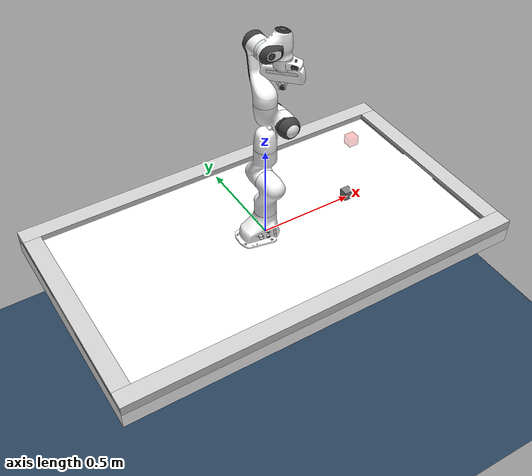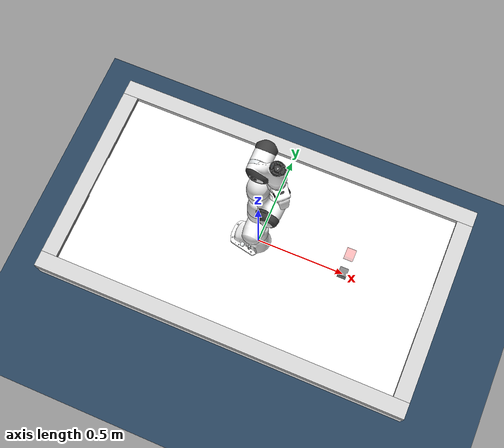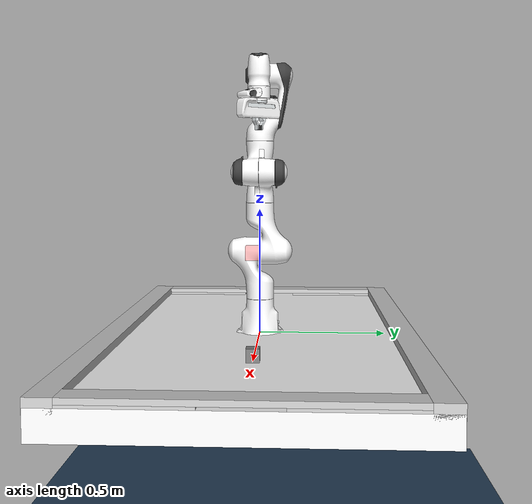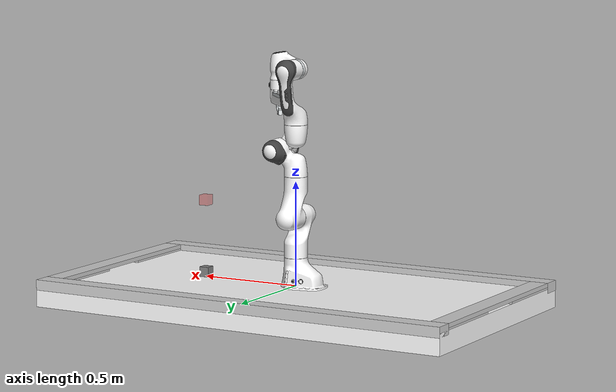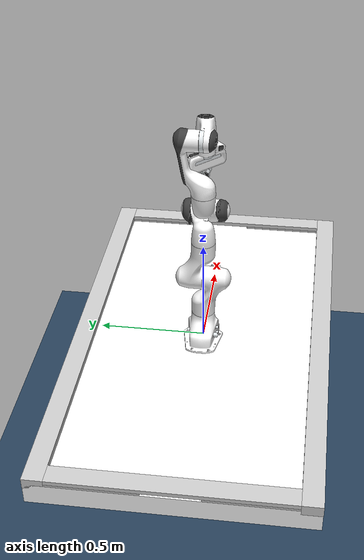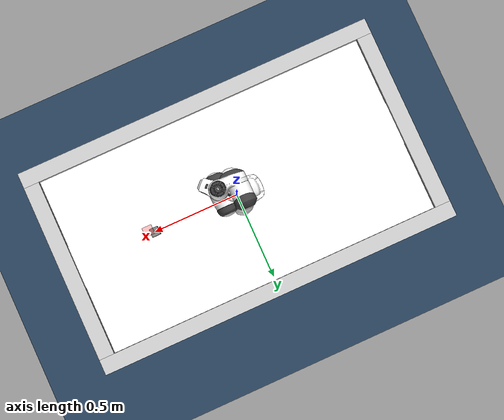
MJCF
<mujoco model="panda scene">

  <option cone="elliptic" timestep="5e-3" integrator="implicitfast">
  </option>
  <include file="panda.xml"/>
  <include file="assets/table.xml"/>
  <include file="assets/cube.xml"/>

  <statistic center="0.3 0 0.4" extent="1"/>

  <visual>
    <headlight diffuse="0.6 0.6 0.6" ambient="0.3 0.3 0.3" specular="0 0 0"/>
    <rgba haze="0.15 0.25 0.35 1"/>
    <global azimuth="120" elevation="-20"/>
  </visual>

  <asset>
    <texture type="skybox" builtin="gradient" rgb1="0.3 0.5 0.7" rgb2="0 0 0" width="512" height="3072"/>
    <texture type="2d" name="groundplane" builtin="checker" mark="edge" rgb1="0.2 0.3 0.4" rgb2="0.1 0.2 0.3"
      markrgb="0.8 0.8 0.8" width="300" height="300"/>
    <material name="groundplane" texture="groundplane" texuniform="true" texrepeat="5 5" reflectance="0.2"/>
  </asset>

  <worldbody>
    <light pos="0 0 1.5" dir="0 0 -1" directional="true"/>
    <geom name="floor" pos="0.0 0.0 -1.05" size="0 0 0.05" type="plane" material="groundplane"/>

    <body name="goal" mocap="true" pos="0.5 0.0 0.375">
      <site name="goal" size="0.024 0.024 0.024" rgba="1 0 0 0.25" type="box"/>
    </body>

  </worldbody>
  <keyframe>
    <key name="home" qpos="0 -0.569 0 -2.810 0 3.037 0.741 0.04 0.04 0.5 0.0 0.024 1 0 0 0" ctrl="0 0 0 0 0 0 0 0.04" act="0 -0.569 0 -2.810 0 3.037 0.741"/>
  </keyframe>
</mujoco>

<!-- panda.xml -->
<mujoco model="panda">
  <compiler angle="radian" meshdir="assets" autolimits="true"/>

  <default>
    <default class="panda">
      <material specular="0.5" shininess="0.25"/>
      <joint armature="0.1" damping="1" axis="0 0 1"/>
      <default class="finger">
        <joint axis="0 1 0" type="slide" range="0 0.04"/>
      </default>

      <default class="visual">
        <geom type="mesh" contype="0" conaffinity="0" group="2"/>
      </default>
      <default class="collision">
        <geom type="mesh" group="3"/>
        <default class="fingertip_pad_collision_1">
          <geom type="box" size="0.0085 0.004 0.0085" pos="0 0.0055 0.0445" solref="0.004 1"/>
        </default>
        <default class="fingertip_pad_collision_2">
          <geom type="box" size="0.003 0.002 0.003" pos="0.0055 0.002 0.05" solref="0.004 1"/>
        </default>
        <default class="fingertip_pad_collision_3">
          <geom type="box" size="0.003 0.002 0.003" pos="-0.0055 0.002 0.05" solref="0.004 1"/>
        </default>
        <default class="fingertip_pad_collision_4">
          <geom type="box" size="0.003 0.002 0.0035" pos="0.0055 0.002 0.0395" solref="0.004 1"/>
        </default>
        <default class="fingertip_pad_collision_5">
          <geom type="box" size="0.003 0.002 0.0035" pos="-0.0055 0.002 0.0395" solref="0.004 1"/>
        </default>
      </default>
    </default>
  </default>

  <asset>
    <material class="panda" name="white" rgba="1 1 1 1"/>
    <material class="panda" name="off_white" rgba="0.901961 0.921569 0.929412 1"/>
    <material class="panda" name="black" rgba="0.25 0.25 0.25 1"/>
    <material class="panda" name="green" rgba="0 1 0 1"/>
    <material class="panda" name="light_blue" rgba="0.039216 0.541176 0.780392 1"/>

    <!-- Collision meshes -->
    <mesh name="link0_c" file="link0.stl"/>
    <mesh name="link1_c" file="link1.stl"/>
    <mesh name="link2_c" file="link2.stl"/>
    <mesh name="link3_c" file="link3.stl"/>
    <mesh name="link4_c" file="link4.stl"/>
    <mesh name="link5_c0" file="link5_collision_0.obj"/>
    <mesh name="link5_c1" file="link5_collision_1.obj"/>
    <mesh name="link5_c2" file="link5_collision_2.obj"/>
    <mesh name="link6_c" file="link6.stl"/>
    <mesh name="link7_c" file="link7.stl"/>
    <mesh name="hand_c" file="hand.stl"/>

    <!-- Visual meshes -->
    <mesh file="link0_0.obj"/>
    <mesh file="link0_1.obj"/>
    <mesh file="link0_2.obj"/>
    <mesh file="link0_3.obj"/>
    <mesh file="link0_4.obj"/>
    <mesh file="link0_5.obj"/>
    <mesh file="link0_7.obj"/>
    <mesh file="link0_8.obj"/>
    <mesh file="link0_9.obj"/>
    <mesh file="link0_10.obj"/>
    <mesh file="link0_11.obj"/>
    <mesh file="link1.obj"/>
    <mesh file="link2.obj"/>
    <mesh file="link3_0.obj"/>
    <mesh file="link3_1.obj"/>
    <mesh file="link3_2.obj"/>
    <mesh file="link3_3.obj"/>
    <mesh file="link4_0.obj"/>
    <mesh file="link4_1.obj"/>
    <mesh file="link4_2.obj"/>
    <mesh file="link4_3.obj"/>
    <mesh file="link5_0.obj"/>
    <mesh file="link5_1.obj"/>
    <mesh file="link5_2.obj"/>
    <mesh file="link6_0.obj"/>
    <mesh file="link6_1.obj"/>
    <mesh file="link6_2.obj"/>
    <mesh file="link6_3.obj"/>
    <mesh file="link6_4.obj"/>
    <mesh file="link6_5.obj"/>
    <mesh file="link6_6.obj"/>
    <mesh file="link6_7.obj"/>
    <mesh file="link6_8.obj"/>
    <mesh file="link6_9.obj"/>
    <mesh file="link6_10.obj"/>
    <mesh file="link6_11.obj"/>
    <mesh file="link6_12.obj"/>
    <mesh file="link6_13.obj"/>
    <mesh file="link6_14.obj"/>
    <mesh file="link6_15.obj"/>
    <mesh file="link6_16.obj"/>
    <mesh file="link7_0.obj"/>
    <mesh file="link7_1.obj"/>
    <mesh file="link7_2.obj"/>
    <mesh file="link7_3.obj"/>
    <mesh file="link7_4.obj"/>
    <mesh file="link7_5.obj"/>
    <mesh file="link7_6.obj"/>
    <mesh file="link7_7.obj"/>
    <mesh file="hand_0.obj"/>
    <mesh file="hand_1.obj"/>
    <mesh file="hand_2.obj"/>
    <mesh file="hand_3.obj"/>
    <mesh file="hand_4.obj"/>
    <mesh file="finger_0.obj"/>
    <mesh file="finger_1.obj"/>
  </asset>

  <worldbody>
    <light name="top" pos="0 0 2" mode="trackcom"/>
    <body name="link0" childclass="panda">
      <inertial mass="0.629769" pos="-0.041018 -0.00014 0.049974"
        fullinertia="0.00315 0.00388 0.004285 8.2904e-7 0.00015 8.2299e-6"/>
      <geom mesh="link0_0" material="off_white" class="visual"/>
      <geom mesh="link0_1" material="black" class="visual"/>
      <geom mesh="link0_2" material="off_white" class="visual"/>
      <geom mesh="link0_3" material="black" class="visual"/>
      <geom mesh="link0_4" material="off_white" class="visual"/>
      <geom mesh="link0_5" material="black" class="visual"/>
      <geom mesh="link0_7" material="white" class="visual"/>
      <geom mesh="link0_8" material="white" class="visual"/>
      <geom mesh="link0_9" material="black" class="visual"/>
      <geom mesh="link0_10" material="off_white" class="visual"/>
      <geom mesh="link0_11" material="white" class="visual"/>
      <geom name="link0_c" mesh="link0_c" class="collision"/>
      <body name="link1" pos="0 0 0.333">
        <inertial mass="4.970684" pos="0.003875 0.002081 -0.04762"
          fullinertia="0.70337 0.70661 0.0091170 -0.00013900 0.0067720 0.019169"/>
        <joint name="joint1" range="-2.8973 2.8973"/>
        <geom material="white" mesh="link1" class="visual"/>
        <geom name="link1_c" mesh="link1_c" class="collision"/>
        <body name="link2" quat="1 -1 0 0">
          <inertial mass="0.646926" pos="-0.003141 -0.02872 0.003495"
            fullinertia="0.0079620 2.8110e-2 2.5995e-2 -3.925e-3 1.0254e-2 7.04e-4"/>
          <joint name="joint2" range="-1.7628 1.7628"/>
          <geom material="white" mesh="link2" class="visual"/>
          <geom name="link2_c" mesh="link2_c" class="collision"/>
          <body name="link3" pos="0 -0.316 0" quat="1 1 0 0">
            <joint name="joint3" range="-2.8973 2.8973"/>
            <inertial mass="3.228604" pos="2.7518e-2 3.9252e-2 -6.6502e-2"
              fullinertia="3.7242e-2 3.6155e-2 1.083e-2 -4.761e-3 -1.1396e-2 -1.2805e-2"/>
            <geom mesh="link3_0" material="white" class="visual"/>
            <geom mesh="link3_1" material="white" class="visual"/>
            <geom mesh="link3_2" material="white" class="visual"/>
            <geom mesh="link3_3" material="black" class="visual"/>
            <geom name="link3_c" mesh="link3_c" class="collision"/>
            <body name="link4" pos="0.0825 0 0" quat="1 1 0 0">
              <inertial mass="3.587895" pos="-5.317e-2 1.04419e-1 2.7454e-2"
                fullinertia="2.5853e-2 1.9552e-2 2.8323e-2 7.796e-3 -1.332e-3 8.641e-3"/>
              <joint name="joint4" range="-3.0718 -0.0698"/>
              <geom mesh="link4_0" material="white" class="visual"/>
              <geom mesh="link4_1" material="white" class="visual"/>
              <geom mesh="link4_2" material="black" class="visual"/>
              <geom mesh="link4_3" material="white" class="visual"/>
              <geom name="link4_c" mesh="link4_c" class="collision"/>
              <body name="link5" pos="-0.0825 0.384 0" quat="1 -1 0 0">
                <inertial mass="1.225946" pos="-1.1953e-2 4.1065e-2 -3.8437e-2"
                  fullinertia="3.5549e-2 2.9474e-2 8.627e-3 -2.117e-3 -4.037e-3 2.29e-4"/>
                <joint name="joint5" range="-2.8973 2.8973"/>
                <geom mesh="link5_0" material="black" class="visual"/>
                <geom mesh="link5_1" material="white" class="visual"/>
                <geom mesh="link5_2" material="white" class="visual"/>
                <geom name="link5_c0" mesh="link5_c0" class="collision"/>
                <geom name="link5_c1" mesh="link5_c1" class="collision"/>
                <geom name="link5_c2" mesh="link5_c2" class="collision"/>
                <body name="link6" quat="1 1 0 0">
                  <inertial mass="1.666555" pos="6.0149e-2 -1.4117e-2 -1.0517e-2"
                    fullinertia="1.964e-3 4.354e-3 5.433e-3 1.09e-4 -1.158e-3 3.41e-4"/>
                  <joint name="joint6" range="-0.0175 3.7525"/>
                  <geom mesh="link6_0" material="off_white" class="visual"/>
                  <geom mesh="link6_1" material="white" class="visual"/>
                  <geom mesh="link6_2" material="black" class="visual"/>
                  <geom mesh="link6_3" material="white" class="visual"/>
                  <geom mesh="link6_4" material="white" class="visual"/>
                  <geom mesh="link6_5" material="white" class="visual"/>
                  <geom mesh="link6_6" material="white" class="visual"/>
                  <geom mesh="link6_7" material="light_blue" class="visual"/>
                  <geom mesh="link6_8" material="light_blue" class="visual"/>
                  <geom mesh="link6_9" material="black" class="visual"/>
                  <geom mesh="link6_10" material="black" class="visual"/>
                  <geom mesh="link6_11" material="white" class="visual"/>
                  <geom mesh="link6_12" material="green" class="visual"/>
                  <geom mesh="link6_13" material="white" class="visual"/>
                  <geom mesh="link6_14" material="black" class="visual"/>
                  <geom mesh="link6_15" material="black" class="visual"/>
                  <geom mesh="link6_16" material="white" class="visual"/>
                  <geom name="link6_c" mesh="link6_c" class="collision"/>
                  <body name="link7" pos="0.088 0 0" quat="1 1 0 0">
                    <inertial mass="7.35522e-01" pos="1.0517e-2 -4.252e-3 6.1597e-2"
                      fullinertia="1.2516e-2 1.0027e-2 4.815e-3 -4.28e-4 -1.196e-3 -7.41e-4"/>
                    <joint name="joint7" range="-2.8973 2.8973"/>
                    <geom mesh="link7_0" material="white" class="visual"/>
                    <geom mesh="link7_1" material="black" class="visual"/>
                    <geom mesh="link7_2" material="black" class="visual"/>
                    <geom mesh="link7_3" material="black" class="visual"/>
                    <geom mesh="link7_4" material="black" class="visual"/>
                    <geom mesh="link7_5" material="black" class="visual"/>
                    <geom mesh="link7_6" material="black" class="visual"/>
                    <geom mesh="link7_7" material="white" class="visual"/>
                    <geom name="link7_c" mesh="link7_c" class="collision"/>
                    <body name="hand" pos="0 0 0.107" quat="0.9238795 0 0 -0.3826834">
                      <inertial mass="0.73" pos="-0.01 0 0.03" diaginertia="0.001 0.0025 0.0017"/>
                      <geom mesh="hand_0" material="off_white" class="visual"/>
                      <geom mesh="hand_1" material="black" class="visual"/>
                      <geom mesh="hand_2" material="black" class="visual"/>
                      <geom mesh="hand_3" material="white" class="visual"/>
                      <geom mesh="hand_4" material="off_white" class="visual"/>
                      <geom name="hand_c" mesh="hand_c" class="collision"/>
                      <site name="gripper" pos="0 0.0 0.107" size="0.005" rgba="1 0 0 1"/>
                      <body name="left_finger" pos="0 0 0.0584">
                        <inertial mass="0.015" pos="0 0 0" diaginertia="2.375e-6 2.375e-6 7.5e-7"/>
                        <joint name="finger_joint1" class="finger"/>
                        <geom mesh="finger_0" material="off_white" class="visual"/>
                        <geom mesh="finger_1" material="black" class="visual"/>
                        <geom mesh="finger_0" class="collision"/>
                        <geom name="left_fingertip_pad_collision_1" class="fingertip_pad_collision_1"/>
                        <geom name="left_fingertip_pad_collision_2" class="fingertip_pad_collision_2"/>
                        <geom name="left_fingertip_pad_collision_3" class="fingertip_pad_collision_3"/>
                        <geom name="left_fingertip_pad_collision_4" class="fingertip_pad_collision_4"/>
                        <geom name="left_fingertip_pad_collision_5" class="fingertip_pad_collision_5"/>

                      </body>
                      <body name="right_finger" pos="0 0 0.0584" quat="0 0 0 1">
                        <inertial mass="0.015" pos="0 0 0" diaginertia="2.375e-6 2.375e-6 7.5e-7"/>
                        <joint name="finger_joint2" class="finger"/>
                        <geom mesh="finger_0" material="off_white" class="visual"/>
                        <geom mesh="finger_1" material="black" class="visual"/>
                        <geom mesh="finger_0" class="collision"/>
                        <geom name="right_fingertip_pad_collision_1" class="fingertip_pad_collision_1"/>
                        <geom name="right_fingertip_pad_collision_2" class="fingertip_pad_collision_2"/>
                        <geom name="right_fingertip_pad_collision_3" class="fingertip_pad_collision_3"/>
                        <geom name="right_fingertip_pad_collision_4" class="fingertip_pad_collision_4"/>
                        <geom name="right_fingertip_pad_collision_5" class="fingertip_pad_collision_5"/>
                      </body>
                    </body>
                  </body>
                </body>
              </body>
            </body>
          </body>
        </body>
      </body>
    </body>
  </worldbody>

  <equality>
    <joint joint1="finger_joint1" joint2="finger_joint2" solimp="0.95 0.99 0.001" solref="0.005 1"/>
  </equality>

  <actuator>
    <intvelocity class="panda" name="actuator1" joint="joint1" ctrlrange="-2.175 2.175" forcerange="-87 87" forcelimited="true" inheritrange="1.0" kp="400" kv="80"/>
    <intvelocity class="panda" name="actuator2" joint="joint2" ctrlrange="-2.175 2.175" forcerange="-87 87" forcelimited="true" inheritrange="1.0" kp="400" kv="80"/>
    <intvelocity class="panda" name="actuator3" joint="joint3" ctrlrange="-2.175 2.175" forcerange="-87 87" forcelimited="true" inheritrange="1.0" kp="400" kv="80"/>
    <intvelocity class="panda" name="actuator4" joint="joint4" ctrlrange="-2.175 2.175" forcerange="-87 87" forcelimited="true" inheritrange="1.0" kp="400" kv="80"/>
    <intvelocity class="panda" name="actuator5" joint="joint5" ctrlrange="-2.61 2.61" forcerange="-12 12" forcelimited="true" inheritrange="1.0" kp="400" kv="80"/>
    <intvelocity class="panda" name="actuator6" joint="joint6" ctrlrange="-2.61 2.61" forcerange="-12 12" forcelimited="true" inheritrange="1.0" kp="400" kv="80"/>
    <intvelocity class="panda" name="actuator7" joint="joint7" ctrlrange="-2.61 2.61" forcerange="-12 12" forcelimited="true" inheritrange="1.0" kp="400" kv="80"/>
    <position name="actuator8" joint="finger_joint1" ctrlrange="0 0.04" kp="350" kv="10" forcerange="-200 200"/>
  </actuator>

</mujoco>

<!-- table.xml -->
<mujoco model="table">

    <option cone="elliptic">
        <flag multiccd="enable"/>
    </option>

    <asset>
        <material name="grey" specular="0.5" shininess="0.25" rgba="0.8 0.8 0.8 1"/>
        <material name="white" specular="0.5" shininess="0.25" rgba="1.0 1.0 1.0 1"/>
        <material name="red" specular="0.5" shininess="0.25" rgba="1.0 0.0 0.0 1"/>
    </asset>

    <default>
        <geom condim="4" solref="0.02 0.3"/>
        <default class="rim">
            <geom type="box" material="grey" friction="0.12931021481683416 0.0 0.0"/>
        </default>
    </default>

    <worldbody>
        <body name="puck" pos="0 0 0">
            <freejoint name="puck"/>
            <geom pos="0 0 0.00245" name="puck" type="cylinder" material="red" size="0.03165 0.00245" friction="0.0 0.002104678089464182 0"/>
            <inertial pos="0 0 0" mass="0.01" diaginertia="0.01 0.01 5e-6"/>
        </body>

        <body name="table">
            <geom name="surface" type="box" material="white" size="1.0695 0.61 0.0505" pos="0 0 -0.0505" friction="0.0002959345937628299 0.0 0.0"/>

            <geom name="rim_home_l" class="rim" size="0.045 0.198 0.005" pos="-1.0245 0.323 0.005"/>
            <geom name="rim_home_r" class="rim" size="0.045 0.198 0.005" pos="-1.0245 -0.323 0.005"/>
            <geom name="rim_home_top" class="rim" size="0.045 0.521 0.01" pos="-1.0245 0 0.02"/>

            <geom name="rim_left" class="rim" size="1.0695 0.045 0.025" pos="0 0.566 0.005"/>
            <geom name="rim_right" class="rim" size="1.0695 0.045 0.025" pos="0 -0.566 0.005"/>

            <geom name="rim_away_l" class="rim" size="0.045 0.198 0.005" pos="1.0245 0.323 0.005"/>
            <geom name="rim_away_r" class="rim" size="0.045 0.198 0.005" pos="1.0245 -0.323 0.005"/>
            <geom name="rim_away_top" class="rim" size="0.045 0.521 0.01" pos="1.0245 0 0.02"/>
        </body>
    </worldbody>
</mujoco>

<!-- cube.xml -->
<mujoco model="table">
  <worldbody>
    <body name="cube" pos="0.5 0.0 0.024">
      <geom name="cube" type="box" size="0.024 0.024 0.024"  mass="0.216" friction="1 0.03 0.003" solref="0.01 1"/>
      <freejoint name="cube"/>
    </body>
  </worldbody>
</mujoco>
